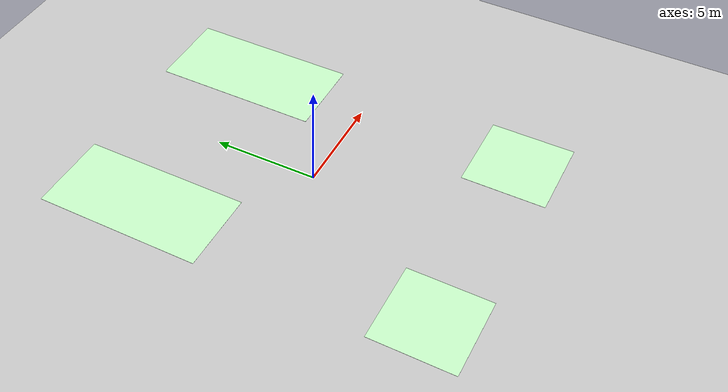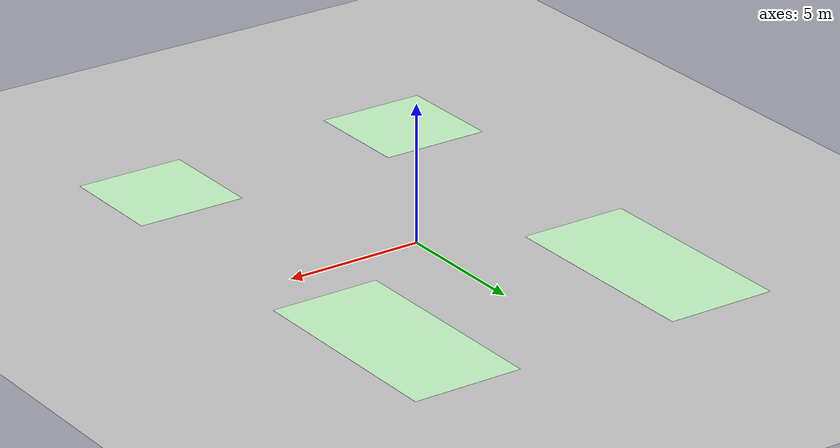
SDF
<sdf version="1.4">
 <world name="default">
  <include><uri>model://ground_plane</uri></include>
  <light type="directional" name="directional">
   <pose>-20 15 25 0 0 0</pose>
   <diffuse>100 100 100 1</diffuse>
   <specular>.1 .1 .1 255</specular>
   <attenuation>
    <range>20</range>
    <linear>0.5</linear>
    <constant>0.5</constant>
    <quadratic>0.0</quadratic>
   </attenuation>
   <direction>0 0 -1</direction>
  </light>
  <include><uri>model://sun</uri></include>
  <include><uri>model://logoURJC</uri><pose>-5 6 0.1 0 0 1.57</pose></include>
  <include><uri>model://logoGMV</uri><pose>5 6 0.1 0 0 1.57</pose></include>
  <include><uri>model://logoJdeRobot</uri><pose>-5 -8 0.1 0 0 1.57</pose></include>
  <include><uri>model://logoETSIT</uri><pose>5 -8 0.1 0 0 1.57</pose></include>
 </world>
</sdf>

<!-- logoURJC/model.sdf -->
<sdf version='1.6'>
  <model name='logoURJC'>
    <static>true</static>
    <link name='link'>
      <collision name='collision'>
        <geometry>
          <plane>
            <normal>0 0 1</normal>
            <size>1 1</size>
        </plane>
      </geometry>
        <surface>
          <friction>
            <ode>
              <mu>0.5</mu>
              <mu2>.5</mu2>
          </ode>
        </friction>
      </surface>
    </collision>

      <visual name='visual_0'>
        <pose>0 0 0.1 0 0 0</pose>

        <cast_shadows>false</cast_shadows>
        <geometry>
          <plane>
            <normal>0 0 1</normal>
            <size>8 4</size>
        </plane>
      </geometry>
        <material>
          <ambient>0.8 1.0 0.8 1.0</ambient>
          <diffuse>0.8 1.0 0.8 1.0</diffuse>
          <specular>0.1 0.1 0.1 1.0</specular>
          <pbr>
            <metal>
              <albedo_map>model://logoURJC/materials/textures/logoURJC.png</albedo_map>
            </metal>
          </pbr>
        </material>
    </visual>
  </link>
</model>
</sdf>

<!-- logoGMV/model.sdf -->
<sdf version='1.6'>
  <model name='logoGMV'>
    <static>true</static>
    <link name='link'>
      <collision name='collision'>
        <geometry>
          <plane>
            <normal>0 0 1</normal>
            <size>1 1</size>
        </plane>
      </geometry>
        <surface>
          <friction>
            <ode>
              <mu>0.5</mu>
              <mu2>.5</mu2>
          </ode>
        </friction>
      </surface>
    </collision>

      <visual name='visual_0'>
        <pose>0 0 0.1 0 0 0</pose>

        <cast_shadows>false</cast_shadows>
        <geometry>
          <plane>
            <normal>0 0 1</normal>
            <size>8 4</size>
        </plane>
      </geometry>
        <material>
          <ambient>0.8 1.0 0.8 1.0</ambient>
          <diffuse>0.8 1.0 0.8 1.0</diffuse>
          <specular>0.1 0.1 0.1 1.0</specular>
          <pbr>
            <metal>
                <albedo_map>model://logoGMV/materials/textures/logoGMV.jpg</albedo_map>
            </metal>
          </pbr>
        </material>
    </visual>
  </link>
</model>
</sdf>

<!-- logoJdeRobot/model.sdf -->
<sdf version="1.6">
  <model name="logoJdeRobot">
    <static>true</static>
    <link name="link">
      <collision name="collision">
        <geometry>
          <plane>
            <normal>0 0 1</normal>
            <size>1 1</size>
          </plane>
        </geometry>
        <surface>
          <friction>
            <ode>
              <mu>0.5</mu>
              <mu2>.5</mu2>
            </ode>
          </friction>
        </surface>
      </collision>

      <visual name="visual_0">
        <pose>0 0 0.1 0 0 0</pose>

        <cast_shadows>false</cast_shadows>
        <geometry>
          <plane>
            <normal>0 0 1</normal>
            <size>4 4</size>
          </plane>
        </geometry>
        <material>
          <ambient>0.8 1.0 0.8 1.0</ambient>
          <diffuse>0.8 1.0 0.8 1.0</diffuse>
          <specular>0.1 0.1 0.1 1.0</specular>
          <pbr>
            <metal>
              <albedo_map>
                model://logoJdeRobot/materials/textures/logoJdeRobot.png</albedo_map>
            </metal>
          </pbr>
        </material>
      </visual>
    </link>
  </model>
</sdf>

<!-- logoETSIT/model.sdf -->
<sdf version='1.6'>
  <model name='logoETSIT'>
    <static>true</static>
    <link name='link'>
      <collision name='collision'>
        <geometry>
          <plane>
            <normal>0 0 1</normal>
            <size>1 1</size>
        </plane>
      </geometry>
        <surface>
          <friction>
            <ode>
              <mu>0.5</mu>
              <mu2>.5</mu2>
          </ode>
        </friction>
      </surface>
    </collision>

      <visual name='visual_0'>
        <pose>0 0 0.1 0 0 0</pose>

        <cast_shadows>false</cast_shadows>
        <geometry>
          <plane>
            <normal>0 0 1</normal>
            <size>4 4</size>
        </plane>
      </geometry>
        <material>
          <ambient>0.8 1.0 0.8 1.0</ambient>
          <diffuse>0.8 1.0 0.8 1.0</diffuse>
          <specular>0.1 0.1 0.1 1.0</specular>
          <pbr>
            <metal>
                <albedo_map>model://logoETSIT/materials/textures/logoETSIT.png</albedo_map>
            </metal>
          </pbr>
        </material>
    </visual>
  </link>
</model>
</sdf>
